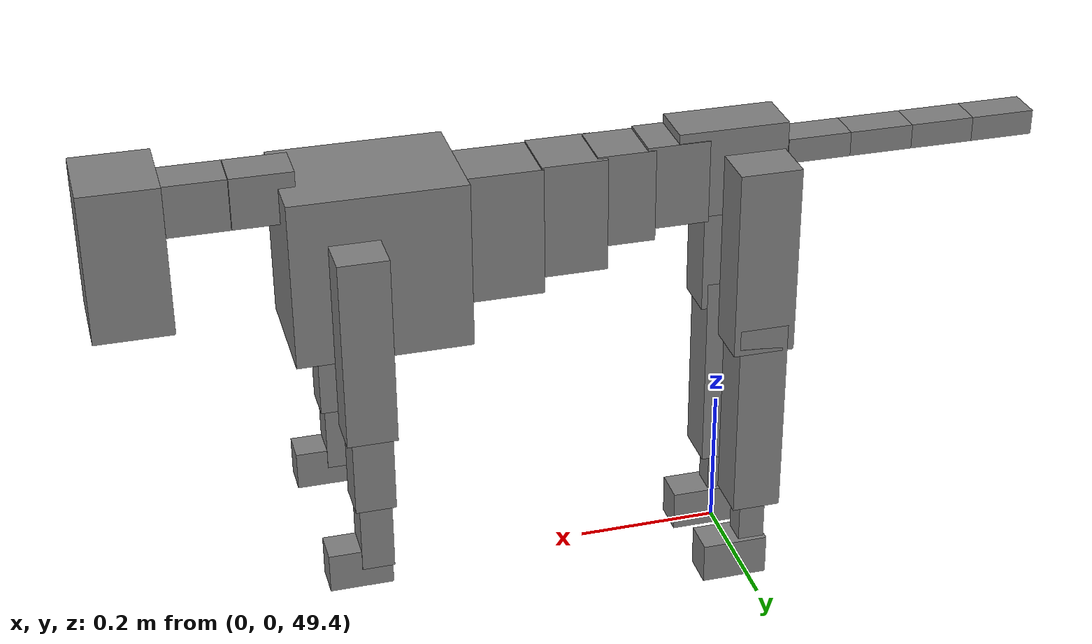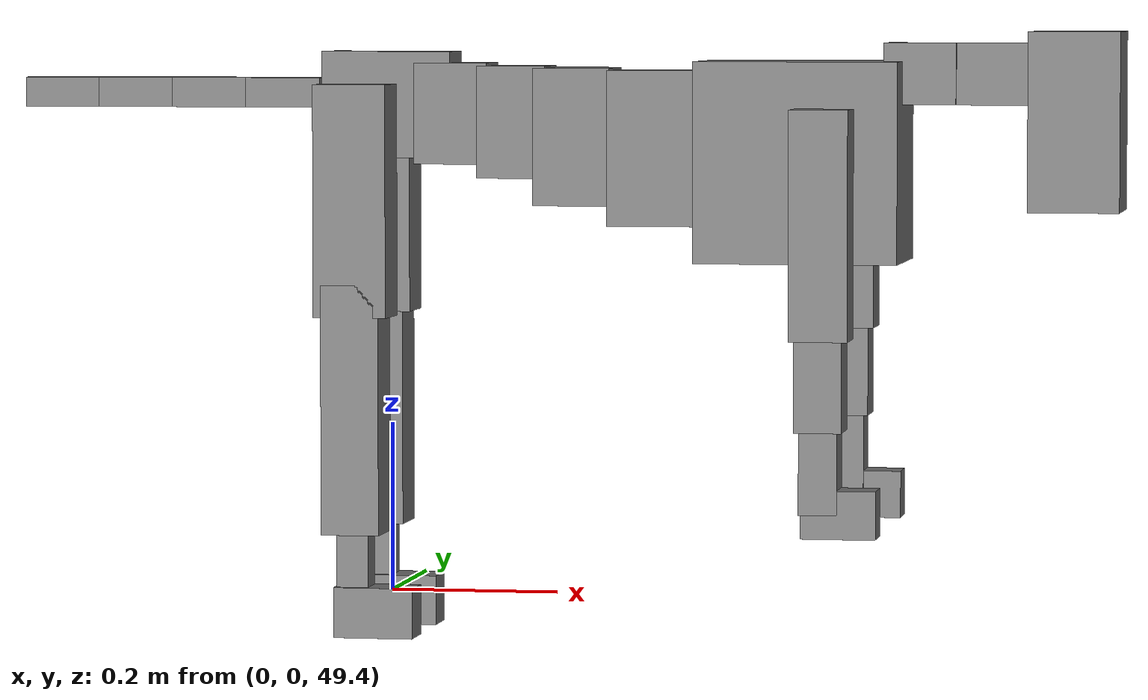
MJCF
<mujoco model="dog">

    <default>
        <joint armature="0.02" stiffness="1" damping="0.2" limited="true"/>
        <geom condim="3" friction="1 0.05 0.05" margin="0.01"/>
        <motor ctrllimited="true" ctrlrange="-1.0 1.0" forcelimited="true" gear="50"/>
    </default>

    <compiler inertiafromgeom="true" angle="radian"/>

    <option timestep="0.016" iterations="50" tolerance="1e-10" solver="Newton" jacobian="dense" cone="pyramidal"/>

    <size nconmax="20000" njmax="60000" nstack="5000000"/>
    <visual>
        <map force="0.1" zfar="30"/>
        <rgba haze="0.15 0.25 0.35 1"/>
        <quality shadowsize="2048"/>
        <global offwidth="800" offheight="800"/>
    </visual>

    <asset>
        <texture type="skybox" builtin="gradient" rgb1="0.3 0.5 0.7" rgb2="0 0 0" width="512" height="512"/>
        <texture name="texplane" type="2d" builtin="checker" rgb1=".2 .3 .4" rgb2=".1 0.15 0.2" width="512" height="512"
                 mark="cross" markrgb=".8 .8 .8"/>
        <texture name="texgeom" type="cube" builtin="flat" mark="cross" width="127" height="1278" rgb1="0.8 0.6 0.4"
                 rgb2="0.8 0.6 0.4" markrgb="1 1 1" random="0.01"/>

        <material name="matplane" reflectance="0.3" texture="texplane" texrepeat="1 1" texuniform="true"/>
        <material name="matgeom" texture="texgeom" texuniform="true" rgba="0.8 0.6 .4 1"/>
    </asset>

    <worldbody>
        <geom name="floor" pos="0 0 0" size="0 0 .25" type="plane" material="matplane" condim="3"/>

        <light directional="false" diffuse=".2 .2 .2" specular="0 0 0" pos="0 0 5" dir="0 0 -1" castshadow="false"/>
        <light mode="targetbodycom" target="torso" directional="false" diffuse=".8 .8 .8" specular="0.3 0.3 0.3"
               pos="0 0 4.0" dir="0 0 -1"/>

        <body name="root" pos="0 0 50">
            <freejoint name="root_1"/>
            <geom type="box" pos="0 0 -0.02" size="0.0774  0.0358  0.063" density="2030"/>

            <body name="spine1" pos="0.054 0 0">
                <joint name="spine1_y" axis="0 1 0" range="0 0.7" limited="true"/>
                <geom type="box" pos="0.02375 0 -0.03" size="0.04375  0.0375  0.05985" density="2030"/>

                <body name="spine2" pos="0.0612 0 0">
                    <joint name="spine2_y" axis="0 1 0" range="-0.15 0.15" limited="true"/>
                    <geom type="box" pos="0.03555  0  -0.04" size="0.04055  0.039  0.06615" density="2030"/>

                    <body name="spine3" pos="0.0730 0 0">
                        <joint name="spine3_y" axis="0 1 0" range="-0.15 0.15" limited="true"/>
                        <geom type="box" pos="0.03555  0  -0.057" size="0.04555  0.0445  0.081" density="2030"/>

                        <body name="spine4" pos="0.0780 0 0">
                            <joint name="spine4_y" axis="0 1 0" range="-0.15 0.15" limited="true"/>
                            <geom type="box" pos="0.05265  0  -0.07" size="0.05265  0.045  0.09135" density="2030"/>

                            <body name="torso" pos="0.1082 0 0">
                                <joint name="torso_y" axis="0 1 0" range="-0.15 0.15" limited="true"/>
                                <geom type="box" pos="0.11925  0  -0.085" size="0.11925  0.085  0.11745"
                                      density="2030"/>

                                <body name="neck1" pos="0.2160  0   0.0180">
                                    <joint name="neck1_y" axis="0 1 0" range="-1.2  -1" limited="true"/>
                                    <geom type="box" pos="0.0423  0  0" size="0.0423  0.03  0.036" density="2325"/>

                                    <body name="neck2" pos="0.0853  0  0">
                                        <joint name="neck2_y" axis="0 1 0" range="0.1  0" limited="true"/>
                                        <geom type="box" pos="0.0423  0  0" size="0.0423  0.03  0.036" density="2325"/>

                                        <body name="head" pos="0.0853  0  0">
                                            <joint name="head_y" axis="0 1 0" range="-0.3  -0.2" limited="true"/>
                                            <geom type="box" pos="0.0531  0  -0.055" size="0.0531  0.06  0.1044"
                                                  density="4030"/>

                                        </body>
                                    </body>
                                </body>

                                <body name="front_shoulder" pos="0.156  0   -0.0480">
                                    <joint name="front_shoulder_y" axis="0 1 0" range="-1 1.5" limited="true"/>
                                    <geom type="box" pos="0 0.13 -0.1064" size="0.0340  0.0290  0.1330" density="1158"/>
                                    <geom type="box" pos="0 -0.13 -0.1064" size="0.0340  0.0290  0.1330"
                                          density="1158"/>

                                    <body name="front_elbow" pos="0  0  -0.2127">
                                        <joint name="front_elbow_y" axis="0 1 0" range="-2 0" limited="true"/>
                                        <geom type="box" pos="0 0.13 -0.0657" size="0.0275  0.0281  0.0657"
                                              density="1081"/>
                                        <geom type="box" pos="0 -0.13 -0.0657" size="0.0275  0.0281  0.0657"
                                              density="1081"/>

                                        <body name="front_wrist" pos="0  0  -0.1314">
                                            <joint name="front_wrist_y" axis="0 1 0" range="-0.2 0" limited="true"/>
                                            <geom type="box" pos="0 0.13 -0.0408" size="0.0221  0.0246  0.0540"
                                                  density="1664"/>
                                            <geom type="box" pos="0 -0.13 -0.0408" size="0.0221  0.0246  0.0540"
                                                  density="1664"/>

                                            <body name="front_finger_end" pos="0  0  -0.0816">
                                                <joint name="front_finger_y" axis="0 1 0" range="-0.4 1"
                                                       limited="true"/>
                                                <geom type="box" pos="0.0236  0.13  -0.0129"
                                                      size="0.0433  0.0236  0.0279" density="1515"/>
                                                <geom type="box" pos="0.0236  -0.13  -0.0129"
                                                      size="0.0433  0.0236  0.0279" density="1515"/>

                                            </body>

                                        </body>
                                    </body>
                                </body>

                            </body>
                        </body>
                    </body>
                </body>
            </body>

            <body name="back_hip" pos="-0.03 0 -0.018">
                <joint name="back_hip_y" axis="0 1 0" range="-1.5 0.3" limited="true"/>
                <geom type="box" pos="0 0.07 -0.1142" size="0.0433  0.0340  0.1370" density="1154"/>
                <geom type="box" pos="0 -0.07 -0.1142" size="0.0433  0.0340  0.1370" density="1154"/>

                <body name="back_knee" pos="0  0  -0.2285">
                    <joint name="back_knee_y" axis="0 1 0" range="0 2.8" limited="true"/>
                    <geom type="box" pos="0 0.07 -0.1318" size="0.0345  0.0340  0.1473" density="1227"/>
                    <geom type="box" pos="0 -0.07 -0.1318" size="0.0345  0.0340  0.1473" density="1227"/>

                    <body name="back_ankle" pos="0  0  -0.2635">
                        <joint name="back_ankle_y" axis="0 1 0" range="-2.2 0" limited="true"/>
                        <geom type="box" pos="0 0.07 -0.0467" size="0.0188  0.0188  0.0579" density="1284"/>
                        <geom type="box" pos="0 -0.07 -0.0467" size="0.0188  0.0188  0.0579" density="1284"/>

                        <body name="back_toe_end" pos="0  0  -0.0934">
                            <joint name="back_toe_y" axis="0 1 0" range="-0.4 1" limited="true"/>
                            <geom type="box" pos="0.0258  0.07  -0.0147" size="0.0473  0.0258  0.0297" density="1515"/>
                            <geom type="box" pos="0.0258  -0.07  -0.0147" size="0.0473  0.0258  0.0297" density="1515"/>

                        </body>
                    </body>
                </body>
            </body>

            <body name="tail1" pos="-0.074 0 -0.006">
                <joint name="tail1_y" axis="0 1 0" range="-0.2 0.2" limited="true"/>
                <geom type="box" pos="-0.0536  0  0" size="0.045  0.025  0.0175" density="1587"/>

                <body name="tail2" pos="-0.09 0 0">
                    <joint name="tail2_y" axis="0 1 0" range="-0.2 0.2" limited="true"/>
                    <geom type="box" pos="-0.0536  0  0" size="0.045  0.025  0.0175" density="1587"/>

                    <body name="tail3" pos="-0.09 0 0">
                        <joint name="tail3_y" axis="0 1 0" range="-0.2 0.2" limited="true"/>
                        <geom type="box" pos="-0.0536  0  0" size="0.045  0.025  0.0175" density="1587"/>

                        <body name="tail4" pos="-0.09 0 0">
                            <joint name="tail4_y" axis="0 1 0" range="-0.2 0.2" limited="true"/>
                            <geom type="box" pos="-0.0536  0  0" size="0.045  0.025  0.0175" density="1587"/>

                        </body>
                    </body>
                </body>
            </body>
        </body>
    </worldbody>

    <actuator>
        <motor joint="spine1_y" forcerange="-150 150     "/>
        <motor joint="spine2_y" forcerange="-150 150     "/>
        <motor joint="spine3_y" forcerange="-150 150     "/>
        <motor joint="spine4_y" forcerange="-150 150     "/>
        <motor joint="torso_y" forcerange="-150 150     "/>
        <motor joint="neck1_y" forcerange="-100 100       "/>
        <motor joint="neck2_y" forcerange="-100 100       "/>
        <motor joint="head_y" forcerange="-150 150       "/>
        <motor joint="front_shoulder_y" forcerange="-112.07 181.41"/>
        <motor joint="front_elbow_y" forcerange="-176.92 127.60"/>
        <motor joint="front_wrist_y" forcerange="-88.10 108.66"/>
        <motor joint="front_finger_y" forcerange="-21.43 64.55"/>
        <motor joint="back_hip_y" forcerange="-336.35 316.72"/>
        <motor joint="back_knee_y" forcerange="-391.15 302.88"/>
        <motor joint="back_angle_y" forcerange="-128.90 72.02"/>
        <motor joint="back_toe_y" forcerange="-80.63 45.89"/>
        <motor joint="tail1_y" forcerange="-50 50     "/>
        <motor joint="tail2_y" forcerange="-50 50     "/>
        <motor joint="tail3_y" forcerange="-50 50     "/>
        <motor joint="tail4_y" forcerange="-50 50     "/>
    </actuator>
</mujoco>
